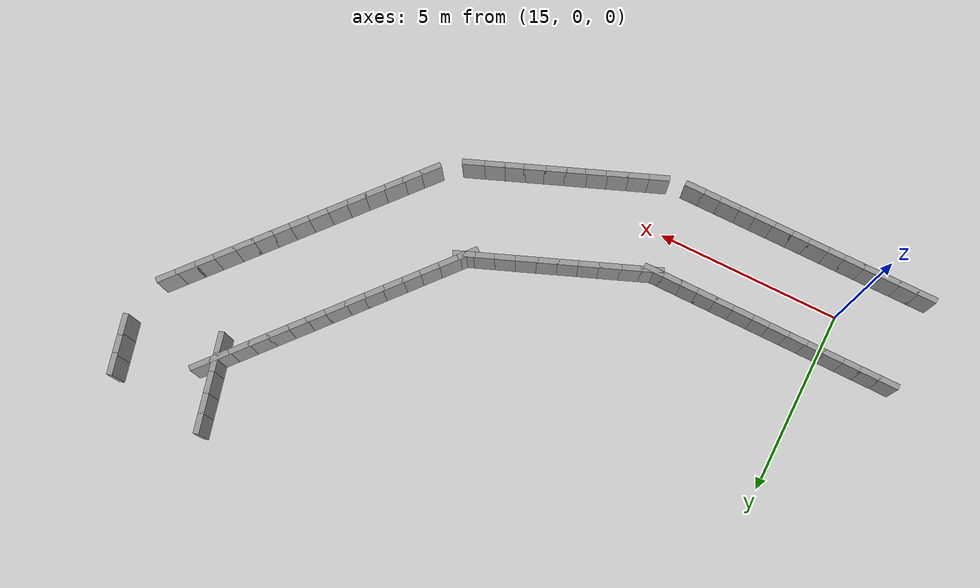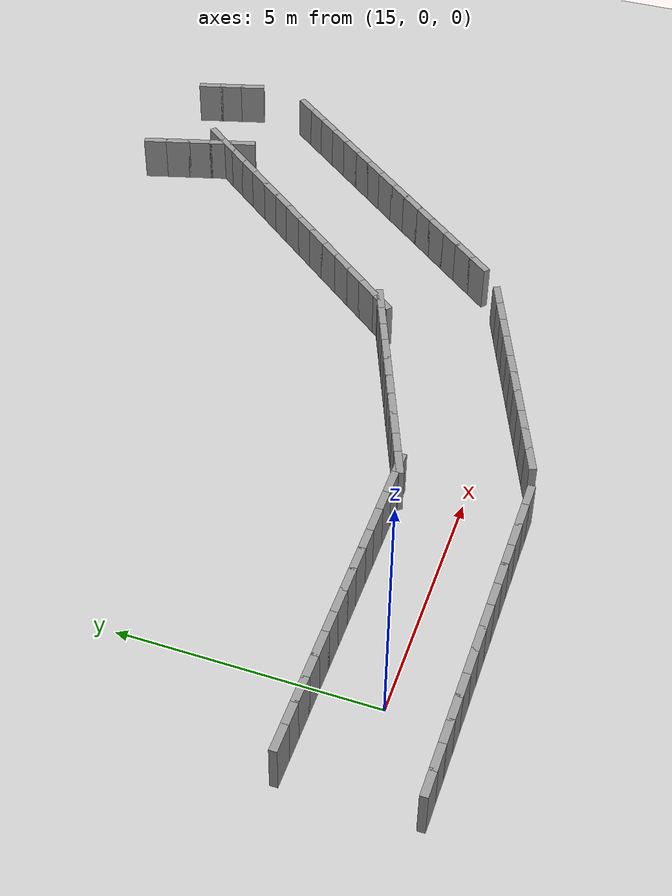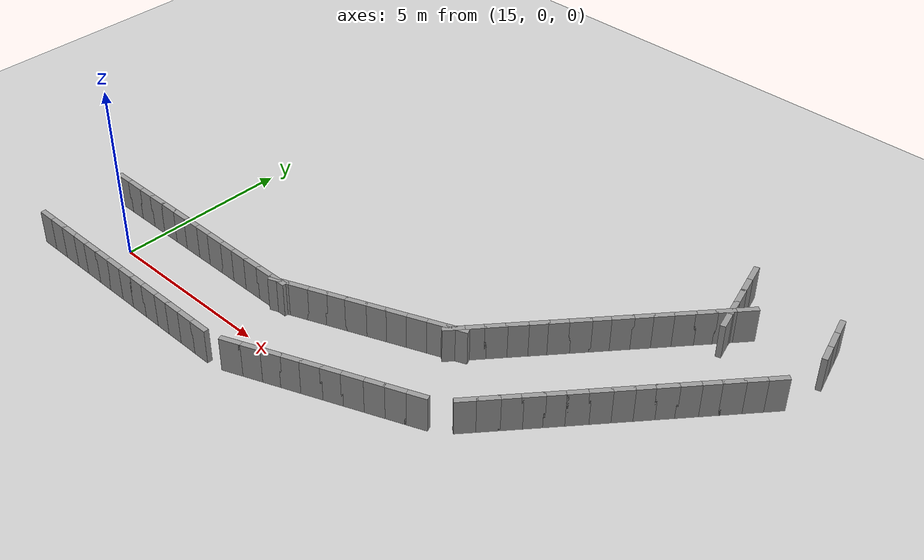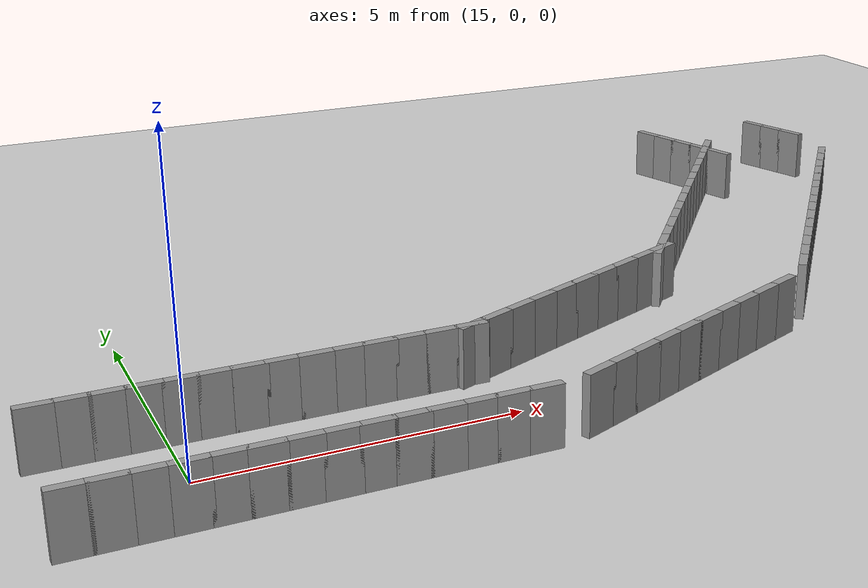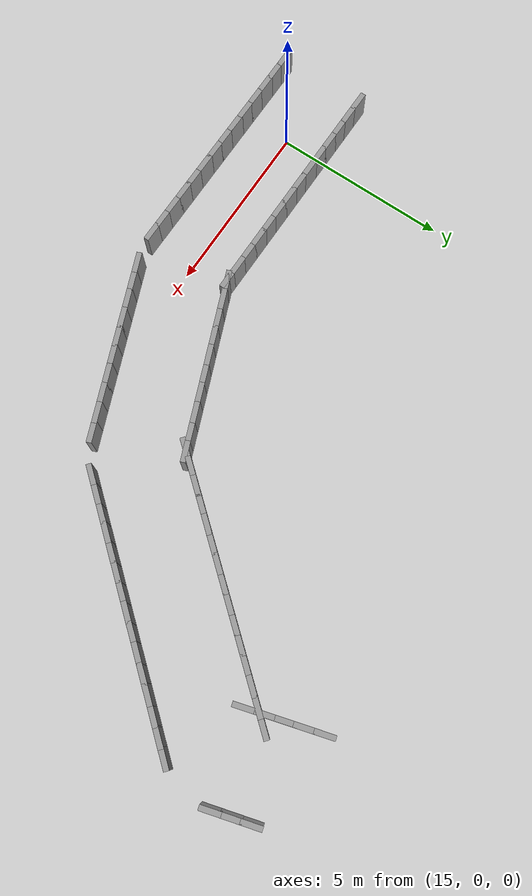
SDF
<sdf version="1.6">
 <world name="robot_harmonic_track">
  <include><uri>model://sun</uri></include>
  <include><uri>model://ground_plane</uri></include>
  <model name="wall_inner_26">
   <pose>13.25 1.25 0.5 0 0 0.0</pose>
   <static>1</static>
   <link name="link">
    <collision name="collision"><geometry><box><size>0.55 0.15 1.0</size></box></geometry></collision>
    <visual name="visual">
     <geometry><box><size>0.55 0.15 1.0</size></box></geometry>
     <material>
      <script><uri>file://media/materials/scripts/gazebo.material</uri><name>Gazebo/Grey</name></script>
     </material>
    </visual>
   </link>
  </model>
  <model name="wall_outer_26">
   <pose>13.25 -1.25 0.5 0 0 0.0</pose>
   <static>1</static>
   <link name="link">
    <collision name="collision"><geometry><box><size>0.55 0.15 1.0</size></box></geometry></collision>
    <visual name="visual">
     <geometry><box><size>0.55 0.15 1.0</size></box></geometry>
     <material>
      <script><uri>file://media/materials/scripts/gazebo.material</uri><name>Gazebo/Grey</name></script>
     </material>
    </visual>
   </link>
  </model>
  <model name="wall_inner_27">
   <pose>13.75 1.25 0.5 0 0 0.0</pose>
   <static>1</static>
   <link name="link">
    <collision name="collision"><geometry><box><size>0.55 0.15 1.0</size></box></geometry></collision>
    <visual name="visual">
     <geometry><box><size>0.55 0.15 1.0</size></box></geometry>
     <material>
      <script><uri>file://media/materials/scripts/gazebo.material</uri><name>Gazebo/Grey</name></script>
     </material>
    </visual>
   </link>
  </model>
  <model name="wall_outer_27">
   <pose>13.75 -1.25 0.5 0 0 0.0</pose>
   <static>1</static>
   <link name="link">
    <collision name="collision"><geometry><box><size>0.55 0.15 1.0</size></box></geometry></collision>
    <visual name="visual">
     <geometry><box><size>0.55 0.15 1.0</size></box></geometry>
     <material>
      <script><uri>file://media/materials/scripts/gazebo.material</uri><name>Gazebo/Grey</name></script>
     </material>
    </visual>
   </link>
  </model>
  <model name="wall_inner_28">
   <pose>14.25 1.25 0.5 0 0 0.0</pose>
   <static>1</static>
   <link name="link">
    <collision name="collision"><geometry><box><size>0.55 0.15 1.0</size></box></geometry></collision>
    <visual name="visual">
     <geometry><box><size>0.55 0.15 1.0</size></box></geometry>
     <material>
      <script><uri>file://media/materials/scripts/gazebo.material</uri><name>Gazebo/Grey</name></script>
     </material>
    </visual>
   </link>
  </model>
  <model name="wall_outer_28">
   <pose>14.25 -1.25 0.5 0 0 0.0</pose>
   <static>1</static>
   <link name="link">
    <collision name="collision"><geometry><box><size>0.55 0.15 1.0</size></box></geometry></collision>
    <visual name="visual">
     <geometry><box><size>0.55 0.15 1.0</size></box></geometry>
     <material>
      <script><uri>file://media/materials/scripts/gazebo.material</uri><name>Gazebo/Grey</name></script>
     </material>
    </visual>
   </link>
  </model>
  <model name="wall_inner_29">
   <pose>14.75 1.25 0.5 0 0 0.0</pose>
   <static>1</static>
   <link name="link">
    <collision name="collision"><geometry><box><size>0.55 0.15 1.0</size></box></geometry></collision>
    <visual name="visual">
     <geometry><box><size>0.55 0.15 1.0</size></box></geometry>
     <material>
      <script><uri>file://media/materials/scripts/gazebo.material</uri><name>Gazebo/Grey</name></script>
     </material>
    </visual>
   </link>
  </model>
  <model name="wall_outer_29">
   <pose>14.75 -1.25 0.5 0 0 0.0</pose>
   <static>1</static>
   <link name="link">
    <collision name="collision"><geometry><box><size>0.55 0.15 1.0</size></box></geometry></collision>
    <visual name="visual">
     <geometry><box><size>0.55 0.15 1.0</size></box></geometry>
     <material>
      <script><uri>file://media/materials/scripts/gazebo.material</uri><name>Gazebo/Grey</name></script>
     </material>
    </visual>
   </link>
  </model>
  <model name="wall_inner_30">
   <pose>15.25 1.25 0.5 0 0 0.0</pose>
   <static>1</static>
   <link name="link">
    <collision name="collision"><geometry><box><size>0.55 0.15 1.0</size></box></geometry></collision>
    <visual name="visual">
     <geometry><box><size>0.55 0.15 1.0</size></box></geometry>
     <material>
      <script><uri>file://media/materials/scripts/gazebo.material</uri><name>Gazebo/Grey</name></script>
     </material>
    </visual>
   </link>
  </model>
  <model name="wall_outer_30">
   <pose>15.25 -1.25 0.5 0 0 0.0</pose>
   <static>1</static>
   <link name="link">
    <collision name="collision"><geometry><box><size>0.55 0.15 1.0</size></box></geometry></collision>
    <visual name="visual">
     <geometry><box><size>0.55 0.15 1.0</size></box></geometry>
     <material>
      <script><uri>file://media/materials/scripts/gazebo.material</uri><name>Gazebo/Grey</name></script>
     </material>
    </visual>
   </link>
  </model>
  <model name="wall_inner_31">
   <pose>15.75 1.25 0.5 0 0 0.0</pose>
   <static>1</static>
   <link name="link">
    <collision name="collision"><geometry><box><size>0.55 0.15 1.0</size></box></geometry></collision>
    <visual name="visual">
     <geometry><box><size>0.55 0.15 1.0</size></box></geometry>
     <material>
      <script><uri>file://media/materials/scripts/gazebo.material</uri><name>Gazebo/Grey</name></script>
     </material>
    </visual>
   </link>
  </model>
  <model name="wall_outer_31">
   <pose>15.75 -1.25 0.5 0 0 0.0</pose>
   <static>1</static>
   <link name="link">
    <collision name="collision"><geometry><box><size>0.55 0.15 1.0</size></box></geometry></collision>
    <visual name="visual">
     <geometry><box><size>0.55 0.15 1.0</size></box></geometry>
     <material>
      <script><uri>file://media/materials/scripts/gazebo.material</uri><name>Gazebo/Grey</name></script>
     </material>
    </visual>
   </link>
  </model>
  <model name="wall_inner_32">
   <pose>16.25 1.25 0.5 0 0 0.0</pose>
   <static>1</static>
   <link name="link">
    <collision name="collision"><geometry><box><size>0.55 0.15 1.0</size></box></geometry></collision>
    <visual name="visual">
     <geometry><box><size>0.55 0.15 1.0</size></box></geometry>
     <material>
      <script><uri>file://media/materials/scripts/gazebo.material</uri><name>Gazebo/Grey</name></script>
     </material>
    </visual>
   </link>
  </model>
  <model name="wall_outer_32">
   <pose>16.25 -1.25 0.5 0 0 0.0</pose>
   <static>1</static>
   <link name="link">
    <collision name="collision"><geometry><box><size>0.55 0.15 1.0</size></box></geometry></collision>
    <visual name="visual">
     <geometry><box><size>0.55 0.15 1.0</size></box></geometry>
     <material>
      <script><uri>file://media/materials/scripts/gazebo.material</uri><name>Gazebo/Grey</name></script>
     </material>
    </visual>
   </link>
  </model>
  <model name="wall_inner_33">
   <pose>16.75 1.25 0.5 0 0 0.0</pose>
   <static>1</static>
   <link name="link">
    <collision name="collision"><geometry><box><size>0.55 0.15 1.0</size></box></geometry></collision>
    <visual name="visual">
     <geometry><box><size>0.55 0.15 1.0</size></box></geometry>
     <material>
      <script><uri>file://media/materials/scripts/gazebo.material</uri><name>Gazebo/Grey</name></script>
     </material>
    </visual>
   </link>
  </model>
  <model name="wall_outer_33">
   <pose>16.75 -1.25 0.5 0 0 0.0</pose>
   <static>1</static>
   <link name="link">
    <collision name="collision"><geometry><box><size>0.55 0.15 1.0</size></box></geometry></collision>
    <visual name="visual">
     <geometry><box><size>0.55 0.15 1.0</size></box></geometry>
     <material>
      <script><uri>file://media/materials/scripts/gazebo.material</uri><name>Gazebo/Grey</name></script>
     </material>
    </visual>
   </link>
  </model>
  <model name="wall_inner_34">
   <pose>17.25 1.25 0.5 0 0 0.0</pose>
   <static>1</static>
   <link name="link">
    <collision name="collision"><geometry><box><size>0.55 0.15 1.0</size></box></geometry></collision>
    <visual name="visual">
     <geometry><box><size>0.55 0.15 1.0</size></box></geometry>
     <material>
      <script><uri>file://media/materials/scripts/gazebo.material</uri><name>Gazebo/Grey</name></script>
     </material>
    </visual>
   </link>
  </model>
  <model name="wall_outer_34">
   <pose>17.25 -1.25 0.5 0 0 0.0</pose>
   <static>1</static>
   <link name="link">
    <collision name="collision"><geometry><box><size>0.55 0.15 1.0</size></box></geometry></collision>
    <visual name="visual">
     <geometry><box><size>0.55 0.15 1.0</size></box></geometry>
     <material>
      <script><uri>file://media/materials/scripts/gazebo.material</uri><name>Gazebo/Grey</name></script>
     </material>
    </visual>
   </link>
  </model>
  <model name="wall_inner_35">
   <pose>17.75 1.25 0.5 0 0 0.0</pose>
   <static>1</static>
   <link name="link">
    <collision name="collision"><geometry><box><size>0.55 0.15 1.0</size></box></geometry></collision>
    <visual name="visual">
     <geometry><box><size>0.55 0.15 1.0</size></box></geometry>
     <material>
      <script><uri>file://media/materials/scripts/gazebo.material</uri><name>Gazebo/Grey</name></script>
     </material>
    </visual>
   </link>
  </model>
  <model name="wall_outer_35">
   <pose>17.75 -1.25 0.5 0 0 0.0</pose>
   <static>1</static>
   <link name="link">
    <collision name="collision"><geometry><box><size>0.55 0.15 1.0</size></box></geometry></collision>
    <visual name="visual">
     <geometry><box><size>0.55 0.15 1.0</size></box></geometry>
     <material>
      <script><uri>file://media/materials/scripts/gazebo.material</uri><name>Gazebo/Grey</name></script>
     </material>
    </visual>
   </link>
  </model>
  <model name="wall_inner_36">
   <pose>18.25 1.25 0.5 0 0 0.0</pose>
   <static>1</static>
   <link name="link">
    <collision name="collision"><geometry><box><size>0.55 0.15 1.0</size></box></geometry></collision>
    <visual name="visual">
     <geometry><box><size>0.55 0.15 1.0</size></box></geometry>
     <material>
      <script><uri>file://media/materials/scripts/gazebo.material</uri><name>Gazebo/Grey</name></script>
     </material>
    </visual>
   </link>
  </model>
  <model name="wall_outer_36">
   <pose>18.25 -1.25 0.5 0 0 0.0</pose>
   <static>1</static>
   <link name="link">
    <collision name="collision"><geometry><box><size>0.55 0.15 1.0</size></box></geometry></collision>
    <visual name="visual">
     <geometry><box><size>0.55 0.15 1.0</size></box></geometry>
     <material>
      <script><uri>file://media/materials/scripts/gazebo.material</uri><name>Gazebo/Grey</name></script>
     </material>
    </visual>
   </link>
  </model>
  <model name="wall_inner_37">
   <pose>18.75 1.25 0.5 0 0 0.0</pose>
   <static>1</static>
   <link name="link">
    <collision name="collision"><geometry><box><size>0.55 0.15 1.0</size></box></geometry></collision>
    <visual name="visual">
     <geometry><box><size>0.55 0.15 1.0</size></box></geometry>
     <material>
      <script><uri>file://media/materials/scripts/gazebo.material</uri><name>Gazebo/Grey</name></script>
     </material>
    </visual>
   </link>
  </model>
  <model name="wall_outer_37">
   <pose>18.75 -1.25 0.5 0 0 0.0</pose>
   <static>1</static>
   <link name="link">
    <collision name="collision"><geometry><box><size>0.55 0.15 1.0</size></box></geometry></collision>
    <visual name="visual">
     <geometry><box><size>0.55 0.15 1.0</size></box></geometry>
     <material>
      <script><uri>file://media/materials/scripts/gazebo.material</uri><name>Gazebo/Grey</name></script>
     </material>
    </visual>
   </link>
  </model>
  <model name="wall_inner_38">
   <pose>19.25 1.25 0.5 0 0 0.0</pose>
   <static>1</static>
   <link name="link">
    <collision name="collision"><geometry><box><size>0.55 0.15 1.0</size></box></geometry></collision>
    <visual name="visual">
     <geometry><box><size>0.55 0.15 1.0</size></box></geometry>
     <material>
      <script><uri>file://media/materials/scripts/gazebo.material</uri><name>Gazebo/Grey</name></script>
     </material>
    </visual>
   </link>
  </model>
  <model name="wall_outer_38">
   <pose>19.25 -1.25 0.5 0 0 0.0</pose>
   <static>1</static>
   <link name="link">
    <collision name="collision"><geometry><box><size>0.55 0.15 1.0</size></box></geometry></collision>
    <visual name="visual">
     <geometry><box><size>0.55 0.15 1.0</size></box></geometry>
     <material>
      <script><uri>file://media/materials/scripts/gazebo.material</uri><name>Gazebo/Grey</name></script>
     </material>
    </visual>
   </link>
  </model>
  <model name="wall_inner_39">
   <pose>19.75 1.25 0.5 0 0 0.0</pose>
   <static>1</static>
   <link name="link">
    <collision name="collision"><geometry><box><size>0.55 0.15 1.0</size></box></geometry></collision>
    <visual name="visual">
     <geometry><box><size>0.55 0.15 1.0</size></box></geometry>
     <material>
      <script><uri>file://media/materials/scripts/gazebo.material</uri><name>Gazebo/Grey</name></script>
     </material>
    </visual>
   </link>
  </model>
  <model name="wall_outer_39">
   <pose>19.75 -1.25 0.5 0 0 0.0</pose>
   <static>1</static>
   <link name="link">
    <collision name="collision"><geometry><box><size>0.55 0.15 1.0</size></box></geometry></collision>
    <visual name="visual">
     <geometry><box><size>0.55 0.15 1.0</size></box></geometry>
     <material>
      <script><uri>file://media/materials/scripts/gazebo.material</uri><name>Gazebo/Grey</name></script>
     </material>
    </visual>
   </link>
  </model>
  <model name="wall_inner_40">
   <pose>19.78576165455737 1.2605958636065742 0.5 0 0 0.3805063771123649</pose>
   <static>1</static>
   <link name="link">
    <collision name="collision">
     <geometry><box><size>0.5885164807134505 0.15 1.0</size></box></geometry>
    </collision>
    <visual name="visual">
     <geometry><box><size>0.5885164807134505 0.15 1.0</size></box></geometry>
     <material>
      <script><uri>file://media/materials/scripts/gazebo.material</uri><name>Gazebo/Grey</name></script>
     </material>
    </visual>
   </link>
  </model>
  <model name="wall_outer_40">
   <pose>20.71423834544263 -1.060595863606574 0.5 0 0 0.3805063771123649</pose>
   <static>1</static>
   <link name="link">
    <collision name="collision">
     <geometry><box><size>0.5885164807134505 0.15 1.0</size></box></geometry>
    </collision>
    <visual name="visual">
     <geometry><box><size>0.5885164807134505 0.15 1.0</size></box></geometry>
     <material>
      <script><uri>file://media/materials/scripts/gazebo.material</uri><name>Gazebo/Grey</name></script>
     </material>
    </visual>
   </link>
  </model>
  <model name="wall_inner_41">
   <pose>20.28576165455737 1.4605958636065741 0.5 0 0 0.3805063771123649</pose>
   <static>1</static>
   <link name="link">
    <collision name="collision">
     <geometry><box><size>0.5885164807134505 0.15 1.0</size></box></geometry>
    </collision>
    <visual name="visual">
     <geometry><box><size>0.5885164807134505 0.15 1.0</size></box></geometry>
     <material>
      <script><uri>file://media/materials/scripts/gazebo.material</uri><name>Gazebo/Grey</name></script>
     </material>
    </visual>
   </link>
  </model>
  <model name="wall_outer_41">
   <pose>21.21423834544263 -0.860595863606574 0.5 0 0 0.3805063771123649</pose>
   <static>1</static>
   <link name="link">
    <collision name="collision">
     <geometry><box><size>0.5885164807134505 0.15 1.0</size></box></geometry>
    </collision>
    <visual name="visual">
     <geometry><box><size>0.5885164807134505 0.15 1.0</size></box></geometry>
     <material>
      <script><uri>file://media/materials/scripts/gazebo.material</uri><name>Gazebo/Grey</name></script>
     </material>
    </visual>
   </link>
  </model>
  <model name="wall_inner_42">
   <pose>20.78576165455737 1.660595863606574 0.5 0 0 0.3805063771123648</pose>
   <static>1</static>
   <link name="link">
    <collision name="collision">
     <geometry><box><size>0.5885164807134504 0.15 1.0</size></box></geometry>
    </collision>
    <visual name="visual">
     <geometry><box><size>0.5885164807134504 0.15 1.0</size></box></geometry>
     <material>
      <script><uri>file://media/materials/scripts/gazebo.material</uri><name>Gazebo/Grey</name></script>
     </material>
    </visual>
   </link>
  </model>
  <model name="wall_outer_42">
   <pose>21.71423834544263 -0.6605958636065741 0.5 0 0 0.3805063771123648</pose>
   <static>1</static>
   <link name="link">
    <collision name="collision">
     <geometry><box><size>0.5885164807134504 0.15 1.0</size></box></geometry>
    </collision>
    <visual name="visual">
     <geometry><box><size>0.5885164807134504 0.15 1.0</size></box></geometry>
     <material>
      <script><uri>file://media/materials/scripts/gazebo.material</uri><name>Gazebo/Grey</name></script>
     </material>
    </visual>
   </link>
  </model>
  <model name="wall_inner_43">
   <pose>21.28576165455737 1.860595863606574 0.5 0 0 0.380506377112365</pose>
   <static>1</static>
   <link name="link">
    <collision name="collision">
     <geometry><box><size>0.5885164807134505 0.15 1.0</size></box></geometry>
    </collision>
    <visual name="visual">
     <geometry><box><size>0.5885164807134505 0.15 1.0</size></box></geometry>
     <material>
      <script><uri>file://media/materials/scripts/gazebo.material</uri><name>Gazebo/Grey</name></script>
     </material>
    </visual>
   </link>
  </model>
  <model name="wall_outer_43">
   <pose>22.21423834544263 -0.4605958636065741 0.5 0 0 0.380506377112365</pose>
   <static>1</static>
   <link name="link">
    <collision name="collision">
     <geometry><box><size>0.5885164807134505 0.15 1.0</size></box></geometry>
    </collision>
    <visual name="visual">
     <geometry><box><size>0.5885164807134505 0.15 1.0</size></box></geometry>
     <material>
      <script><uri>file://media/materials/scripts/gazebo.material</uri><name>Gazebo/Grey</name></script>
     </material>
    </visual>
   </link>
  </model>
  <model name="wall_inner_44">
   <pose>21.78576165455737 2.060595863606574 0.5 0 0 0.3805063771123648</pose>
   <static>1</static>
   <link name="link">
    <collision name="collision">
     <geometry><box><size>0.5885164807134504 0.15 1.0</size></box></geometry>
    </collision>
    <visual name="visual">
     <geometry><box><size>0.5885164807134504 0.15 1.0</size></box></geometry>
     <material>
      <script><uri>file://media/materials/scripts/gazebo.material</uri><name>Gazebo/Grey</name></script>
     </material>
    </visual>
   </link>
  </model>
  <model name="wall_outer_44">
   <pose>22.71423834544263 -0.26059586360657405 0.5 0 0 0.3805063771123648</pose>
   <static>1</static>
   <link name="link">
    <collision name="collision">
     <geometry><box><size>0.5885164807134504 0.15 1.0</size></box></geometry>
    </collision>
    <visual name="visual">
     <geometry><box><size>0.5885164807134504 0.15 1.0</size></box></geometry>
     <material>
      <script><uri>file://media/materials/scripts/gazebo.material</uri><name>Gazebo/Grey</name></script>
     </material>
    </visual>
   </link>
  </model>
  <model name="wall_inner_45">
   <pose>22.28576165455737 2.260595863606574 0.5 0 0 0.3805063771123648</pose>
   <static>1</static>
   <link name="link">
    <collision name="collision">
     <geometry><box><size>0.5885164807134504 0.15 1.0</size></box></geometry>
    </collision>
    <visual name="visual">
     <geometry><box><size>0.5885164807134504 0.15 1.0</size></box></geometry>
     <material>
      <script><uri>file://media/materials/scripts/gazebo.material</uri><name>Gazebo/Grey</name></script>
     </material>
    </visual>
   </link>
  </model>
  <model name="wall_outer_45">
   <pose>23.21423834544263 -0.060595863606573985 0.5 0 0 0.3805063771123648</pose>
   <static>1</static>
   <link name="link">
    <collision name="collision">
     <geometry><box><size>0.5885164807134504 0.15 1.0</size></box></geometry>
    </collision>
    <visual name="visual">
     <geometry><box><size>0.5885164807134504 0.15 1.0</size></box></geometry>
     <material>
      <script><uri>file://media/materials/scripts/gazebo.material</uri><name>Gazebo/Grey</name></script>
     </material>
    </visual>
   </link>
  </model>
  <model name="wall_inner_46">
   <pose>22.78576165455737 2.460595863606574 0.5 0 0 0.3805063771123648</pose>
   <static>1</static>
   <link name="link">
    <collision name="collision">
     <geometry><box><size>0.5885164807134504 0.15 1.0</size></box></geometry>
    </collision>
    <visual name="visual">
     <geometry><box><size>0.5885164807134504 0.15 1.0</size></box></geometry>
     <material>
      <script><uri>file://media/materials/scripts/gazebo.material</uri><name>Gazebo/Grey</name></script>
     </material>
    </visual>
   </link>
  </model>
  <model name="wall_outer_46">
   <pose>23.71423834544263 0.13940413639342575 0.5 0 0 0.3805063771123648</pose>
   <static>1</static>
   <link name="link">
    <collision name="collision">
     <geometry><box><size>0.5885164807134504 0.15 1.0</size></box></geometry>
    </collision>
    <visual name="visual">
     <geometry><box><size>0.5885164807134504 0.15 1.0</size></box></geometry>
     <material>
      <script><uri>file://media/materials/scripts/gazebo.material</uri><name>Gazebo/Grey</name></script>
     </material>
    </visual>
   </link>
  </model>
  <model name="wall_inner_47">
   <pose>23.28576165455737 2.660595863606574 0.5 0 0 0.3805063771123652</pose>
   <static>1</static>
   <link name="link">
    <collision name="collision">
     <geometry><box><size>0.5885164807134505 0.15 1.0</size></box></geometry>
    </collision>
    <visual name="visual">
     <geometry><box><size>0.5885164807134505 0.15 1.0</size></box></geometry>
     <material>
      <script><uri>file://media/materials/scripts/gazebo.material</uri><name>Gazebo/Grey</name></script>
     </material>
    </visual>
   </link>
  </model>
  <model name="wall_outer_47">
   <pose>24.21423834544263 0.3394041363934259 0.5 0 0 0.3805063771123652</pose>
   <static>1</static>
   <link name="link">
    <collision name="collision">
     <geometry><box><size>0.5885164807134505 0.15 1.0</size></box></geometry>
    </collision>
    <visual name="visual">
     <geometry><box><size>0.5885164807134505 0.15 1.0</size></box></geometry>
     <material>
      <script><uri>file://media/materials/scripts/gazebo.material</uri><name>Gazebo/Grey</name></script>
     </material>
    </visual>
   </link>
  </model>
  <model name="wall_inner_48">
   <pose>23.78576165455737 2.8605958636065743 0.5 0 0 0.3805063771123648</pose>
   <static>1</static>
   <link name="link">
    <collision name="collision">
     <geometry><box><size>0.5885164807134504 0.15 1.0</size></box></geometry>
    </collision>
    <visual name="visual">
     <geometry><box><size>0.5885164807134504 0.15 1.0</size></box></geometry>
     <material>
      <script><uri>file://media/materials/scripts/gazebo.material</uri><name>Gazebo/Grey</name></script>
     </material>
    </visual>
   </link>
  </model>
  <model name="wall_outer_48">
   <pose>24.71423834544263 0.5394041363934261 0.5 0 0 0.3805063771123648</pose>
   <static>1</static>
   <link name="link">
    <collision name="collision">
     <geometry><box><size>0.5885164807134504 0.15 1.0</size></box></geometry>
    </collision>
    <visual name="visual">
     <geometry><box><size>0.5885164807134504 0.15 1.0</size></box></geometry>
     <material>
      <script><uri>file://media/materials/scripts/gazebo.material</uri><name>Gazebo/Grey</name></script>
     </material>
    </visual>
   </link>
  </model>
  <model name="wall_inner_49">
   <pose>24.28576165455737 3.060595863606574 0.5 0 0 0.3805063771123648</pose>
   <static>1</static>
   <link name="link">
    <collision name="collision">
     <geometry><box><size>0.5885164807134504 0.15 1.0</size></box></geometry>
    </collision>
    <visual name="visual">
     <geometry><box><size>0.5885164807134504 0.15 1.0</size></box></geometry>
     <material>
      <script><uri>file://media/materials/scripts/gazebo.material</uri><name>Gazebo/Grey</name></script>
     </material>
    </visual>
   </link>
  </model>
  <model name="wall_outer_49">
   <pose>25.21423834544263 0.7394041363934258 0.5 0 0 0.3805063771123648</pose>
   <static>1</static>
   <link name="link">
    <collision name="collision">
     <geometry><box><size>0.5885164807134504 0.15 1.0</size></box></geometry>
    </collision>
    <visual name="visual">
     <geometry><box><size>0.5885164807134504 0.15 1.0</size></box></geometry>
     <material>
      <script><uri>file://media/materials/scripts/gazebo.material</uri><name>Gazebo/Grey</name></script>
     </material>
    </visual>
   </link>
  </model>
  <model name="wall_inner_50">
   <pose>24.20639006716994 3.0002304995805984 0.5 0 0 0.8760580505981951</pose>
   <static>1</static>
   <link name="link">
    <collision name="collision">
     <geometry><box><size>0.5706833117271095 0.15 1.0</size></box></geometry>
    </collision>
    <visual name="visual">
     <geometry><box><size>0.5706833117271095 0.15 1.0</size></box></geometry>
     <material>
      <script><uri>file://media/materials/scripts/gazebo.material</uri><name>Gazebo/Grey</name></script>
     </material>
    </visual>
   </link>
  </model>
  <model name="wall_outer_50">
   <pose>26.126943266163387 1.399769500419402 0.5 0 0 0.8760580505981951</pose>
   <static>1</static>
   <link name="link">
    <collision name="collision">
     <geometry><box><size>0.5706833117271095 0.15 1.0</size></box></geometry>
    </collision>
    <visual name="visual">
     <geometry><box><size>0.5706833117271095 0.15 1.0</size></box></geometry>
     <material>
      <script><uri>file://media/materials/scripts/gazebo.material</uri><name>Gazebo/Grey</name></script>
     </material>
    </visual>
   </link>
  </model>
  <model name="wall_inner_51">
   <pose>24.539723400503284 3.4002304995806027 0.5 0 0 0.8760580505981899</pose>
   <static>1</static>
   <link name="link">
    <collision name="collision">
     <geometry><box><size>0.5706833117271118 0.15 1.0</size></box></geometry>
    </collision>
    <visual name="visual">
     <geometry><box><size>0.5706833117271118 0.15 1.0</size></box></geometry>
     <material>
      <script><uri>file://media/materials/scripts/gazebo.material</uri><name>Gazebo/Grey</name></script>
     </material>
    </visual>
   </link>
  </model>
  <model name="wall_outer_51">
   <pose>26.460276599496716 1.7997695004193965 0.5 0 0 0.8760580505981899</pose>
   <static>1</static>
   <link name="link">
    <collision name="collision">
     <geometry><box><size>0.5706833117271118 0.15 1.0</size></box></geometry>
    </collision>
    <visual name="visual">
     <geometry><box><size>0.5706833117271118 0.15 1.0</size></box></geometry>
     <material>
      <script><uri>file://media/materials/scripts/gazebo.material</uri><name>Gazebo/Grey</name></script>
     </material>
    </visual>
   </link>
  </model>
  <model name="wall_inner_52">
   <pose>24.873056733836613 3.8002304995805978 0.5 0 0 0.8760580505981956</pose>
   <static>1</static>
   <link name="link">
    <collision name="collision">
     <geometry><box><size>0.5706833117271098 0.15 1.0</size></box></geometry>
    </collision>
    <visual name="visual">
     <geometry><box><size>0.5706833117271098 0.15 1.0</size></box></geometry>
     <material>
      <script><uri>file://media/materials/scripts/gazebo.material</uri><name>Gazebo/Grey</name></script>
     </material>
    </visual>
   </link>
  </model>
  <model name="wall_outer_52">
   <pose>26.79360993283006 2.1997695004194022 0.5 0 0 0.8760580505981956</pose>
   <static>1</static>
   <link name="link">
    <collision name="collision">
     <geometry><box><size>0.5706833117271098 0.15 1.0</size></box></geometry>
    </collision>
    <visual name="visual">
     <geometry><box><size>0.5706833117271098 0.15 1.0</size></box></geometry>
     <material>
      <script><uri>file://media/materials/scripts/gazebo.material</uri><name>Gazebo/Grey</name></script>
     </material>
    </visual>
   </link>
  </model>
  <model name="wall_inner_53">
   <pose>25.20639006716994 4.200230499580599 0.5 0 0 0.8760580505981951</pose>
   <static>1</static>
   <link name="link">
    <collision name="collision">
     <geometry><box><size>0.5706833117271095 0.15 1.0</size></box></geometry>
    </collision>
    <visual name="visual">
     <geometry><box><size>0.5706833117271095 0.15 1.0</size></box></geometry>
     <material>
      <script><uri>file://media/materials/scripts/gazebo.material</uri><name>Gazebo/Grey</name></script>
     </material>
    </visual>
   </link>
  </model>
  <model name="wall_outer_53">
   <pose>27.126943266163387 2.599769500419402 0.5 0 0 0.8760580505981951</pose>
   <static>1</static>
   <link name="link">
    <collision name="collision">
     <geometry><box><size>0.5706833117271095 0.15 1.0</size></box></geometry>
    </collision>
    <visual name="visual">
     <geometry><box><size>0.5706833117271095 0.15 1.0</size></box></geometry>
     <material>
      <script><uri>file://media/materials/scripts/gazebo.material</uri><name>Gazebo/Grey</name></script>
     </material>
    </visual>
   </link>
  </model>
  <model name="wall_inner_54">
   <pose>25.539723400503284 4.600230499580603 0.5 0 0 0.8760580505981899</pose>
   <static>1</static>
   <link name="link">
    <collision name="collision">
     <geometry><box><size>0.5706833117271118 0.15 1.0</size></box></geometry>
    </collision>
    <visual name="visual">
     <geometry><box><size>0.5706833117271118 0.15 1.0</size></box></geometry>
     <material>
      <script><uri>file://media/materials/scripts/gazebo.material</uri><name>Gazebo/Grey</name></script>
     </material>
    </visual>
   </link>
  </model>
  <model name="wall_outer_54">
   <pose>27.460276599496716 2.9997695004193967 0.5 0 0 0.8760580505981899</pose>
   <static>1</static>
   <link name="link">
    <collision name="collision">
     <geometry><box><size>0.5706833117271118 0.15 1.0</size></box></geometry>
    </collision>
    <visual name="visual">
     <geometry><box><size>0.5706833117271118 0.15 1.0</size></box></geometry>
     <material>
      <script><uri>file://media/materials/scripts/gazebo.material</uri><name>Gazebo/Grey</name></script>
     </material>
    </visual>
   </link>
  </model>
  <model name="wall_inner_55">
   <pose>25.873056733836613 5.0002304995805975 0.5 0 0 0.8760580505981956</pose>
   <static>1</static>
   <link name="link">
    <collision name="collision">
     <geometry><box><size>0.5706833117271098 0.15 1.0</size></box></geometry>
    </collision>
    <visual name="visual">
     <geometry><box><size>0.5706833117271098 0.15 1.0</size></box></geometry>
     <material>
      <script><uri>file://media/materials/scripts/gazebo.material</uri><name>Gazebo/Grey</name></script>
     </material>
    </visual>
   </link>
  </model>
  <model name="wall_outer_55">
   <pose>27.79360993283006 3.3997695004194024 0.5 0 0 0.8760580505981956</pose>
   <static>1</static>
   <link name="link">
    <collision name="collision">
     <geometry><box><size>0.5706833117271098 0.15 1.0</size></box></geometry>
    </collision>
    <visual name="visual">
     <geometry><box><size>0.5706833117271098 0.15 1.0</size></box></geometry>
     <material>
      <script><uri>file://media/materials/scripts/gazebo.material</uri><name>Gazebo/Grey</name></script>
     </material>
    </visual>
   </link>
  </model>
  <model name="wall_inner_56">
   <pose>26.206390067169945 5.400230499580599 0.5 0 0 0.8760580505981945</pose>
   <static>1</static>
   <link name="link">
    <collision name="collision">
     <geometry><box><size>0.5706833117271092 0.15 1.0</size></box></geometry>
    </collision>
    <visual name="visual">
     <geometry><box><size>0.5706833117271092 0.15 1.0</size></box></geometry>
     <material>
      <script><uri>file://media/materials/scripts/gazebo.material</uri><name>Gazebo/Grey</name></script>
     </material>
    </visual>
   </link>
  </model>
  <model name="wall_outer_56">
   <pose>28.126943266163384 3.799769500419401 0.5 0 0 0.8760580505981945</pose>
   <static>1</static>
   <link name="link">
    <collision name="collision">
     <geometry><box><size>0.5706833117271092 0.15 1.0</size></box></geometry>
    </collision>
    <visual name="visual">
     <geometry><box><size>0.5706833117271092 0.15 1.0</size></box></geometry>
     <material>
      <script><uri>file://media/materials/scripts/gazebo.material</uri><name>Gazebo/Grey</name></script>
     </material>
    </visual>
   </link>
  </model>
  <model name="wall_inner_57">
   <pose>26.539723400503284 5.800230499580603 0.5 0 0 0.8760580505981904</pose>
   <static>1</static>
   <link name="link">
    <collision name="collision">
     <geometry><box><size>0.5706833117271122 0.15 1.0</size></box></geometry>
    </collision>
    <visual name="visual">
     <geometry><box><size>0.5706833117271122 0.15 1.0</size></box></geometry>
     <material>
      <script><uri>file://media/materials/scripts/gazebo.material</uri><name>Gazebo/Grey</name></script>
     </material>
    </visual>
   </link>
  </model>
  <model name="wall_outer_57">
   <pose>28.460276599496716 4.199769500419397 0.5 0 0 0.8760580505981904</pose>
   <static>1</static>
   <link name="link">
    <collision name="collision">
     <geometry><box><size>0.5706833117271122 0.15 1.0</size></box></geometry>
    </collision>
    <visual name="visual">
     <geometry><box><size>0.5706833117271122 0.15 1.0</size></box></geometry>
     <material>
      <script><uri>file://media/materials/scripts/gazebo.material</uri><name>Gazebo/Grey</name></script>
     </material>
    </visual>
   </link>
  </model>
  <model name="wall_inner_58">
   <pose>26.873056733836616 6.2002304995805995 0.5 0 0 0.8760580505981945</pose>
   <static>1</static>
   <link name="link">
    <collision name="collision">
     <geometry><box><size>0.5706833117271092 0.15 1.0</size></box></geometry>
    </collision>
    <visual name="visual">
     <geometry><box><size>0.5706833117271092 0.15 1.0</size></box></geometry>
     <material>
      <script><uri>file://media/materials/scripts/gazebo.material</uri><name>Gazebo/Grey</name></script>
     </material>
    </visual>
   </link>
  </model>
  <model name="wall_outer_58">
   <pose>28.793609932830055 4.599769500419401 0.5 0 0 0.8760580505981945</pose>
   <static>1</static>
   <link name="link">
    <collision name="collision">
     <geometry><box><size>0.5706833117271092 0.15 1.0</size></box></geometry>
    </collision>
    <visual name="visual">
     <geometry><box><size>0.5706833117271092 0.15 1.0</size></box></geometry>
     <material>
      <script><uri>file://media/materials/scripts/gazebo.material</uri><name>Gazebo/Grey</name></script>
     </material>
    </visual>
   </link>
  </model>
  <model name="wall_inner_59">
   <pose>27.20639006716994 6.600230499580597 0.5 0 0 0.8760580505981956</pose>
   <static>1</static>
   <link name="link">
    <collision name="collision">
     <geometry><box><size>0.5706833117271098 0.15 1.0</size></box></geometry>
    </collision>
    <visual name="visual">
     <geometry><box><size>0.5706833117271098 0.15 1.0</size></box></geometry>
     <material>
      <script><uri>file://media/materials/scripts/gazebo.material</uri><name>Gazebo/Grey</name></script>
     </material>
    </visual>
   </link>
  </model>
  <model name="wall_outer_59">
   <pose>29.126943266163387 4.9997695004194025 0.5 0 0 0.8760580505981956</pose>
   <static>1</static>
   <link name="link">
    <collision name="collision">
     <geometry><box><size>0.5706833117271098 0.15 1.0</size></box></geometry>
    </collision>
    <visual name="visual">
     <geometry><box><size>0.5706833117271098 0.15 1.0</size></box></geometry>
     <material>
      <script><uri>file://media/materials/scripts/gazebo.material</uri><name>Gazebo/Grey</name></script>
     </material>
    </visual>
   </link>
  </model>
  <model name="wall_inner_60">
   <pose>27.539723400503284 7.000230499580603 0.5 0 0 0.8760580505981893</pose>
   <static>1</static>
   <link name="link">
    <collision name="collision">
     <geometry><box><size>0.5706833117271115 0.15 1.0</size></box></geometry>
    </collision>
    <visual name="visual">
     <geometry><box><size>0.5706833117271115 0.15 1.0</size></box></geometry>
     <material>
      <script><uri>file://media/materials/scripts/gazebo.material</uri><name>Gazebo/Grey</name></script>
     </material>
    </visual>
   </link>
  </model>
  <model name="wall_outer_60">
   <pose>29.460276599496716 5.399769500419396 0.5 0 0 0.8760580505981893</pose>
   <static>1</static>
   <link name="link">
    <collision name="collision">
     <geometry><box><size>0.5706833117271115 0.15 1.0</size></box></geometry>
    </collision>
    <visual name="visual">
     <geometry><box><size>0.5706833117271115 0.15 1.0</size></box></geometry>
     <material>
      <script><uri>file://media/materials/scripts/gazebo.material</uri><name>Gazebo/Grey</name></script>
     </material>
    </visual>
   </link>
  </model>
  <model name="wall_inner_61">
   <pose>27.873056733836613 7.400230499580596 0.5 0 0 0.8760580505981967</pose>
   <static>1</static>
   <link name="link">
    <collision name="collision">
     <geometry><box><size>0.5706833117271105 0.15 1.0</size></box></geometry>
    </collision>
    <visual name="visual">
     <geometry><box><size>0.5706833117271105 0.15 1.0</size></box></geometry>
     <material>
      <script><uri>file://media/materials/scripts/gazebo.material</uri><name>Gazebo/Grey</name></script>
     </material>
    </visual>
   </link>
  </model>
  <model name="wall_outer_61">
   <pose>29.79360993283006 5.799769500419403 0.5 0 0 0.8760580505981967</pose>
   <static>1</static>
   <link name="link">
    <collision name="collision">
     <geometry><box><size>0.5706833117271105 0.15 1.0</size></box></geometry>
    </collision>
    <visual name="visual">
     <geometry><box><size>0.5706833117271105 0.15 1.0</size></box></geometry>
     <material>
      <script><uri>file://media/materials/scripts/gazebo.material</uri><name>Gazebo/Grey</name></script>
     </material>
    </visual>
   </link>
  </model>
  <model name="wall_inner_62">
   <pose>28.206390067169952 7.8002304995806035 0.5 0 0 0.8760580505981893</pose>
   <static>1</static>
   <link name="link">
    <collision name="collision">
     <geometry><box><size>0.5706833117271115 0.15 1.0</size></box></geometry>
    </collision>
    <visual name="visual">
     <geometry><box><size>0.5706833117271115 0.15 1.0</size></box></geometry>
     <material>
      <script><uri>file://media/materials/scripts/gazebo.material</uri><name>Gazebo/Grey</name></script>
     </material>
    </visual>
   </link>
  </model>
  <model name="wall_outer_62">
   <pose>30.126943266163384 6.1997695004193965 0.5 0 0 0.8760580505981893</pose>
   <static>1</static>
   <link name="link">
    <collision name="collision">
     <geometry><box><size>0.5706833117271115 0.15 1.0</size></box></geometry>
    </collision>
    <visual name="visual">
     <geometry><box><size>0.5706833117271115 0.15 1.0</size></box></geometry>
     <material>
      <script><uri>file://media/materials/scripts/gazebo.material</uri><name>Gazebo/Grey</name></script>
     </material>
    </visual>
   </link>
  </model>
  <model name="wall_inner_63">
   <pose>28.53972340050328 8.200230499580599 0.5 0 0 0.8760580505981945</pose>
   <static>1</static>
   <link name="link">
    <collision name="collision">
     <geometry><box><size>0.5706833117271092 0.15 1.0</size></box></geometry>
    </collision>
    <visual name="visual">
     <geometry><box><size>0.5706833117271092 0.15 1.0</size></box></geometry>
     <material>
      <script><uri>file://media/materials/scripts/gazebo.material</uri><name>Gazebo/Grey</name></script>
     </material>
    </visual>
   </link>
  </model>
  <model name="wall_outer_63">
   <pose>30.46027659949672 6.599769500419401 0.5 0 0 0.8760580505981945</pose>
   <static>1</static>
   <link name="link">
    <collision name="collision">
     <geometry><box><size>0.5706833117271092 0.15 1.0</size></box></geometry>
    </collision>
    <visual name="visual">
     <geometry><box><size>0.5706833117271092 0.15 1.0</size></box></geometry>
     <material>
      <script><uri>file://media/materials/scripts/gazebo.material</uri><name>Gazebo/Grey</name></script>
     </material>
    </visual>
   </link>
  </model>
  <model name="wall_inner_64">
   <pose>28.873056733836613 8.600230499580597 0.5 0 0 0.8760580505981956</pose>
   <static>1</static>
   <link name="link">
    <collision name="collision">
     <geometry><box><size>0.5706833117271098 0.15 1.0</size></box></geometry>
    </collision>
    <visual name="visual">
     <geometry><box><size>0.5706833117271098 0.15 1.0</size></box></geometry>
     <material>
      <script><uri>file://media/materials/scripts/gazebo.material</uri><name>Gazebo/Grey</name></script>
     </material>
    </visual>
   </link>
  </model>
  <model name="wall_outer_64">
   <pose>30.79360993283006 6.9997695004194025 0.5 0 0 0.8760580505981956</pose>
   <static>1</static>
   <link name="link">
    <collision name="collision">
     <geometry><box><size>0.5706833117271098 0.15 1.0</size></box></geometry>
    </collision>
    <visual name="visual">
     <geometry><box><size>0.5706833117271098 0.15 1.0</size></box></geometry>
     <material>
      <script><uri>file://media/materials/scripts/gazebo.material</uri><name>Gazebo/Grey</name></script>
     </material>
    </visual>
   </link>
  </model>
  <model name="wall_inner_65">
   <pose>28.7266664940204 7.9065985901282785 0.5 0 0 1.8490959858000071</pose>
   <static>1</static>
   <link name="link">
    <collision name="collision">
     <geometry><box><size>0.5700078492343227 0.15 1.0</size></box></geometry>
    </collision>
    <visual name="visual">
     <geometry><box><size>0.5700078492343227 0.15 1.0</size></box></geometry>
     <material>
      <script><uri>file://media/materials/scripts/gazebo.material</uri><name>Gazebo/Grey</name></script>
     </material>
    </visual>
   </link>
  </model>
  <model name="wall_outer_65">
   <pose>31.13047636312246 8.59340140987172 0.5 0 0 1.8490959858000071</pose>
   <static>1</static>
   <link name="link">
    <collision name="collision">
     <geometry><box><size>0.5700078492343227 0.15 1.0</size></box></geometry>
    </collision>
    <visual name="visual">
     <geometry><box><size>0.5700078492343227 0.15 1.0</size></box></geometry>
     <material>
      <script><uri>file://media/materials/scripts/gazebo.material</uri><name>Gazebo/Grey</name></script>
     </material>
    </visual>
   </link>
  </model>
  <model name="wall_inner_66">
   <pose>28.583809351163254 8.40659859012828 0.5 0 0 1.8490959858000071</pose>
   <static>1</static>
   <link name="link">
    <collision name="collision">
     <geometry><box><size>0.5700078492343227 0.15 1.0</size></box></geometry>
    </collision>
    <visual name="visual">
     <geometry><box><size>0.5700078492343227 0.15 1.0</size></box></geometry>
     <material>
      <script><uri>file://media/materials/scripts/gazebo.material</uri><name>Gazebo/Grey</name></script>
     </material>
    </visual>
   </link>
  </model>
  <model name="wall_outer_66">
   <pose>30.987619220265316 9.09340140987172 0.5 0 0 1.8490959858000071</pose>
   <static>1</static>
   <link name="link">
    <collision name="collision">
     <geometry><box><size>0.5700078492343227 0.15 1.0</size></box></geometry>
    </collision>
    <visual name="visual">
     <geometry><box><size>0.5700078492343227 0.15 1.0</size></box></geometry>
     <material>
      <script><uri>file://media/materials/scripts/gazebo.material</uri><name>Gazebo/Grey</name></script>
     </material>
    </visual>
   </link>
  </model>
  <model name="wall_inner_67">
   <pose>28.440952208306115 8.90659859012828 0.5 0 0 1.8490959858000071</pose>
   <static>1</static>
   <link name="link">
    <collision name="collision">
     <geometry><box><size>0.5700078492343227 0.15 1.0</size></box></geometry>
    </collision>
    <visual name="visual">
     <geometry><box><size>0.5700078492343227 0.15 1.0</size></box></geometry>
     <material>
      <script><uri>file://media/materials/scripts/gazebo.material</uri><name>Gazebo/Grey</name></script>
     </material>
    </visual>
   </link>
  </model>
  <model name="wall_outer_67">
   <pose>30.844762077408177 9.59340140987172 0.5 0 0 1.8490959858000071</pose>
   <static>1</static>
   <link name="link">
    <collision name="collision">
     <geometry><box><size>0.5700078492343227 0.15 1.0</size></box></geometry>
    </collision>
    <visual name="visual">
     <geometry><box><size>0.5700078492343227 0.15 1.0</size></box></geometry>
     <material>
      <script><uri>file://media/materials/scripts/gazebo.material</uri><name>Gazebo/Grey</name></script>
     </material>
    </visual>
   </link>
  </model>
  <model name="wall_inner_68">
   <pose>28.298095065448972 9.40659859012827 0.5 0 0 1.8490959858000136</pose>
   <static>1</static>
   <link name="link">
    <collision name="collision">
     <geometry><box><size>0.5700078492343236 0.15 1.0</size></box></geometry>
    </collision>
    <visual name="visual">
     <geometry><box><size>0.5700078492343236 0.15 1.0</size></box></geometry>
     <material>
      <script><uri>file://media/materials/scripts/gazebo.material</uri><name>Gazebo/Grey</name></script>
     </material>
    </visual>
   </link>
  </model>
  <model name="wall_inner_69">
   <pose>28.155237922591823 9.90659859012828 0.5 0 0 1.8490959858000071</pose>
   <static>1</static>
   <link name="link">
    <collision name="collision">
     <geometry><box><size>0.5700078492343227 0.15 1.0</size></box></geometry>
    </collision>
    <visual name="visual">
     <geometry><box><size>0.5700078492343227 0.15 1.0</size></box></geometry>
     <material>
      <script><uri>file://media/materials/scripts/gazebo.material</uri><name>Gazebo/Grey</name></script>
     </material>
    </visual>
   </link>
  </model>
 </world>
</sdf>
